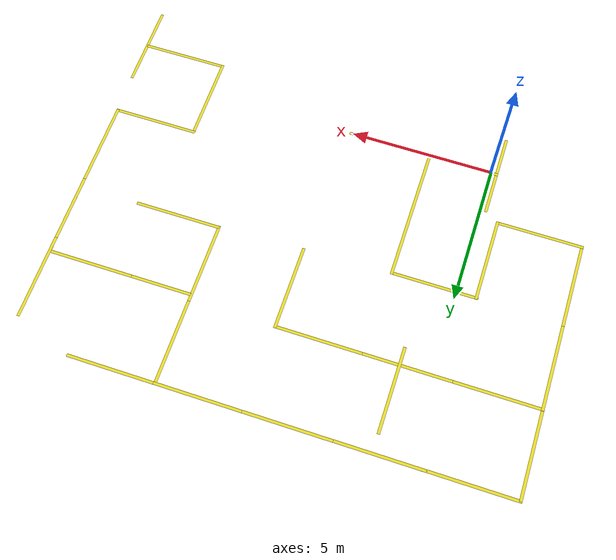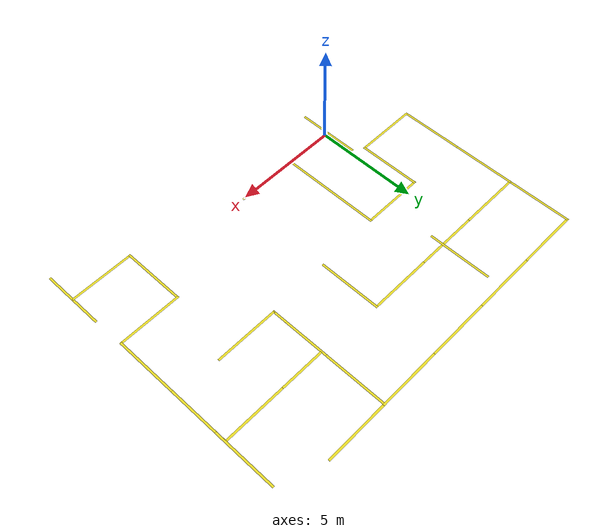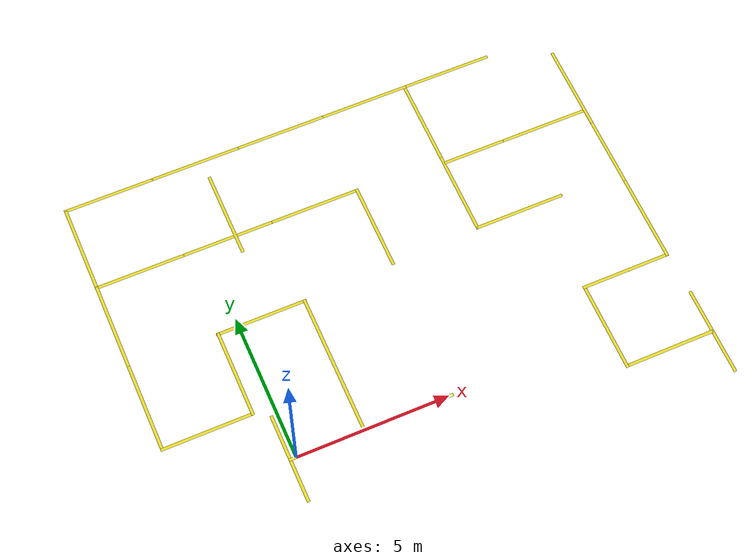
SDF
<sdf version="1.7">
 <world name="default">
  <light name="sun" type="directional">
   <pose>0 0 10 0 -0 0</pose>
   <diffuse>0.8 0.8 0.8 1</diffuse>
   <specular>0.1 0.1 0.1 1</specular>
   <attenuation>
    <range>1000</range>
    <constant>0.9</constant>
    <linear>0.01</linear>
    <quadratic>0.001</quadratic>
   </attenuation>
   <direction>-0.5 0.5 -1</direction>
   <spot><inner_angle>0</inner_angle><outer_angle>0</outer_angle><falloff>0</falloff></spot>
  </light>
  <gravity>0 0 -9.8</gravity>
  <magnetic_field>6e-06 2.3e-05 -4.2e-05</magnetic_field>
  <atmosphere type="adiabatic"/>
  <physics name="default_physics" default="0" type="ode">
   <max_step_size>0.001</max_step_size>
   <real_time_factor>1</real_time_factor>
   <real_time_update_rate>1000</real_time_update_rate>
  </physics>
  <scene><ambient>0.4 0.4 0.4 1</ambient><background>0.7 0.7 0.7 1</background><shadows>1</shadows></scene>
  <spherical_coordinates>
   <surface_model>EARTH_WGS84</surface_model>
   <latitude_deg>0</latitude_deg>
   <longitude_deg>0</longitude_deg>
   <elevation>0</elevation>
   <heading_deg>0</heading_deg>
  </spherical_coordinates>
  <model name="yellow line_5">
   <static>1</static>
   <link name="link_ground">
    <collision name="collision">
     <geometry><plane><normal>0 0 1</normal><size>0.1 4.8</size></plane></geometry>
     <surface><friction><ode><mu>100</mu><mu2>50</mu2></ode></friction></surface>
    </collision>
    <visual name="visual_ground">
     <cast_shadows>0</cast_shadows>
     <geometry><plane><normal>0 0 1</normal><size>0.1 4.8</size></plane></geometry>
     <material>
      <script><uri>file://media/materials/scripts/gazebo.material</uri><name>Gazebo/Yellow</name></script>
     </material>
    </visual>
   </link>
   <pose>2.19978 2.39516 0 0 -0 0</pose>
  </model>
  <model name="yellow line_6">
   <static>1</static>
   <link name="link_ground">
    <collision name="collision">
     <geometry><plane><normal>0 0 1</normal><size>0.1 2.5</size></plane></geometry>
     <surface><friction><ode><mu>100</mu><mu2>50</mu2></ode></friction></surface>
    </collision>
    <visual name="visual_ground">
     <cast_shadows>0</cast_shadows>
     <geometry><plane><normal>0 0 1</normal><size>0.1 2.5</size></plane></geometry>
     <material>
      <script><uri>file://media/materials/scripts/gazebo.material</uri><name>Gazebo/Yellow</name></script>
     </material>
    </visual>
   </link>
   <pose>1 0 0 0 -0 1.57</pose>
  </model>
  <model name="yellow line">
   <pose>3.64067 -0.002486 -2e-06 4e-06 -0 1.57263</pose>
   <link name="link_ground">
    <collision name="collision">
     <geometry><box><size>0.1 3 1e-05</size></box></geometry>
     <surface><friction><ode><mu>100</mu><mu2>50</mu2></ode></friction></surface>
    </collision>
    <visual name="visual_ground">
     <cast_shadows>0</cast_shadows>
     <geometry><box><size>0.1 3 1e-05</size></box></geometry>
     <material>
      <script><uri>file://media/materials/scripts/gazebo.material</uri><name>Gazebo/Yellow</name></script>
     </material>
    </visual>
    <inertial>
     <inertia><ixx>1</ixx><ixy>0</ixy><ixz>0</ixz><iyy>1</iyy><iyz>0</iyz><izz>1</izz></inertia>
     <mass>1</mass>
    </inertial>
   </link>
  </model>
  <model name="yellow line_clone">
   <pose>0.7517 4.74225 -3e-06 -6e-06 0 1.57253</pose>
   <link name="link_ground">
    <collision name="collision">
     <geometry><box><size>0.1 3 1e-05</size></box></geometry>
     <surface><friction><ode><mu>100</mu><mu2>50</mu2></ode></friction></surface>
    </collision>
    <visual name="visual_ground">
     <cast_shadows>0</cast_shadows>
     <geometry><box><size>0.1 3 1e-05</size></box></geometry>
     <material>
      <script><uri>file://media/materials/scripts/gazebo.material</uri><name>Gazebo/Yellow</name></script>
     </material>
    </visual>
    <inertial>
     <inertia><ixx>1</ixx><ixy>0</ixy><ixz>0</ixz><iyy>1</iyy><iyz>0</iyz><izz>1</izz></inertia>
     <mass>1</mass>
    </inertial>
   </link>
  </model>
  <model name="yellow line_0">
   <pose>-0.684863 3.2835 7e-06 -6e-06 1e-06 2e-06</pose>
   <link name="link_ground">
    <collision name="collision">
     <geometry><box><size>0.1 3 1e-05</size></box></geometry>
     <surface><friction><ode><mu>100</mu><mu2>50</mu2></ode></friction></surface>
    </collision>
    <visual name="visual_ground">
     <cast_shadows>0</cast_shadows>
     <geometry><box><size>0.1 3 1e-05</size></box></geometry>
     <material>
      <script><uri>file://media/materials/scripts/gazebo.material</uri><name>Gazebo/Yellow</name></script>
     </material>
    </visual>
    <inertial>
     <inertia><ixx>1</ixx><ixy>0</ixy><ixz>0</ixz><iyy>1</iyy><iyz>0</iyz><izz>1</izz></inertia>
     <mass>1</mass>
    </inertial>
   </link>
  </model>
  <model name="yellow line_clone_clone">
   <pose>-2.14412 1.82781 -9e-06 1e-05 -0 1.57253</pose>
   <link name="link_ground">
    <collision name="collision">
     <geometry><box><size>0.1 3 1e-05</size></box></geometry>
     <surface><friction><ode><mu>100</mu><mu2>50</mu2></ode></friction></surface>
    </collision>
    <visual name="visual_ground">
     <cast_shadows>0</cast_shadows>
     <geometry><box><size>0.1 3 1e-05</size></box></geometry>
     <material>
      <script><uri>file://media/materials/scripts/gazebo.material</uri><name>Gazebo/Yellow</name></script>
     </material>
    </visual>
    <inertial>
     <inertia><ixx>1</ixx><ixy>0</ixy><ixz>0</ixz><iyy>1</iyy><iyz>0</iyz><izz>1</izz></inertia>
     <mass>1</mass>
    </inertial>
   </link>
  </model>
  <model name="yellow line_1">
   <pose>-3.59658 3.31193 -8e-06 5e-06 2e-06 0</pose>
   <link name="link_ground">
    <collision name="collision">
     <geometry><box><size>0.1 3 1e-05</size></box></geometry>
     <surface><friction><ode><mu>100</mu><mu2>50</mu2></ode></friction></surface>
    </collision>
    <visual name="visual_ground">
     <cast_shadows>0</cast_shadows>
     <geometry><box><size>0.1 3 1e-05</size></box></geometry>
     <material>
      <script><uri>file://media/materials/scripts/gazebo.material</uri><name>Gazebo/Yellow</name></script>
     </material>
    </visual>
    <inertial>
     <inertia><ixx>1</ixx><ixy>0</ixy><ixz>0</ixz><iyy>1</iyy><iyz>0</iyz><izz>1</izz></inertia>
     <mass>1</mass>
    </inertial>
   </link>
  </model>
  <model name="yellow line_2">
   <pose>-3.59619 6.29229 -3e-06 6e-06 -2e-06 0</pose>
   <link name="link_ground">
    <collision name="collision">
     <geometry><box><size>0.1 3 1e-05</size></box></geometry>
     <surface><friction><ode><mu>100</mu><mu2>50</mu2></ode></friction></surface>
    </collision>
    <visual name="visual_ground">
     <cast_shadows>0</cast_shadows>
     <geometry><box><size>0.1 3 1e-05</size></box></geometry>
     <material>
      <script><uri>file://media/materials/scripts/gazebo.material</uri><name>Gazebo/Yellow</name></script>
     </material>
    </visual>
    <inertial>
     <inertia><ixx>1</ixx><ixy>0</ixy><ixz>0</ixz><iyy>1</iyy><iyz>0</iyz><izz>1</izz></inertia>
     <mass>1</mass>
    </inertial>
   </link>
  </model>
  <model name="yellow line_clone_clone_0">
   <pose>-2.14961 7.75344 -1.8e-05 -9e-06 1e-06 1.57253</pose>
   <link name="link_ground">
    <collision name="collision">
     <geometry><box><size>0.1 3 1e-05</size></box></geometry>
     <surface><friction><ode><mu>100</mu><mu2>50</mu2></ode></friction></surface>
    </collision>
    <visual name="visual_ground">
     <cast_shadows>0</cast_shadows>
     <geometry><box><size>0.1 3 1e-05</size></box></geometry>
     <material>
      <script><uri>file://media/materials/scripts/gazebo.material</uri><name>Gazebo/Yellow</name></script>
     </material>
    </visual>
    <inertial>
     <inertia><ixx>1</ixx><ixy>0</ixy><ixz>0</ixz><iyy>1</iyy><iyz>0</iyz><izz>1</izz></inertia>
     <mass>1</mass>
    </inertial>
   </link>
  </model>
  <model name="yellow line_2_clone">
   <pose>-3.59718 9.25688 -2e-05 1.7e-05 -0 0</pose>
   <link name="link_ground">
    <collision name="collision">
     <geometry><box><size>0.1 3 1e-05</size></box></geometry>
     <surface><friction><ode><mu>100</mu><mu2>50</mu2></ode></friction></surface>
    </collision>
    <visual name="visual_ground">
     <cast_shadows>0</cast_shadows>
     <geometry><box><size>0.1 3 1e-05</size></box></geometry>
     <material>
      <script><uri>file://media/materials/scripts/gazebo.material</uri><name>Gazebo/Yellow</name></script>
     </material>
    </visual>
    <inertial>
     <inertia><ixx>1</ixx><ixy>0</ixy><ixz>0</ixz><iyy>1</iyy><iyz>0</iyz><izz>1</izz></inertia>
     <mass>1</mass>
    </inertial>
   </link>
  </model>
  <model name="yellow line_clone_clone_1">
   <pose>0.810121 7.75828 -1.8e-05 2.3e-05 -5e-06 1.57253</pose>
   <link name="link_ground">
    <collision name="collision">
     <geometry><box><size>0.1 3 1e-05</size></box></geometry>
     <surface><friction><ode><mu>100</mu><mu2>50</mu2></ode></friction></surface>
    </collision>
    <visual name="visual_ground">
     <cast_shadows>0</cast_shadows>
     <geometry><box><size>0.1 3 1e-05</size></box></geometry>
     <material>
      <script><uri>file://media/materials/scripts/gazebo.material</uri><name>Gazebo/Yellow</name></script>
     </material>
    </visual>
    <inertial>
     <inertia><ixx>1</ixx><ixy>0</ixy><ixz>0</ixz><iyy>1</iyy><iyz>0</iyz><izz>1</izz></inertia>
     <mass>1</mass>
    </inertial>
   </link>
  </model>
  <model name="yellow line_clone_clone_2">
   <pose>3.79999 7.76362 -2e-06 -4e-06 1e-06 1.57253</pose>
   <link name="link_ground">
    <collision name="collision">
     <geometry><box><size>0.1 3 1e-05</size></box></geometry>
     <surface><friction><ode><mu>100</mu><mu2>50</mu2></ode></friction></surface>
    </collision>
    <visual name="visual_ground">
     <cast_shadows>0</cast_shadows>
     <geometry><box><size>0.1 3 1e-05</size></box></geometry>
     <material>
      <script><uri>file://media/materials/scripts/gazebo.material</uri><name>Gazebo/Yellow</name></script>
     </material>
    </visual>
    <inertial>
     <inertia><ixx>1</ixx><ixy>0</ixy><ixz>0</ixz><iyy>1</iyy><iyz>0</iyz><izz>1</izz></inertia>
     <mass>1</mass>
    </inertial>
   </link>
  </model>
  <model name="yellow line_3">
   <pose>5.25144 6.31254 -0 1.1e-05 -0 0</pose>
   <link name="link_ground">
    <collision name="collision">
     <geometry><box><size>0.1 3 1e-05</size></box></geometry>
     <surface><friction><ode><mu>100</mu><mu2>50</mu2></ode></friction></surface>
    </collision>
    <visual name="visual_ground">
     <cast_shadows>0</cast_shadows>
     <geometry><box><size>0.1 3 1e-05</size></box></geometry>
     <material>
      <script><uri>file://media/materials/scripts/gazebo.material</uri><name>Gazebo/Yellow</name></script>
     </material>
    </visual>
    <inertial>
     <inertia><ixx>1</ixx><ixy>0</ixy><ixz>0</ixz><iyy>1</iyy><iyz>0</iyz><izz>1</izz></inertia>
     <mass>1</mass>
    </inertial>
   </link>
  </model>
  <model name="yellow line_4">
   <pose>1.06082 8.61861 -2e-06 4e-06 -1e-06 0</pose>
   <link name="link_ground">
    <collision name="collision">
     <geometry><box><size>0.1 2.99999 1e-05</size></box></geometry>
     <surface><friction><ode><mu>100</mu><mu2>50</mu2></ode></friction></surface>
    </collision>
    <visual name="visual_ground">
     <cast_shadows>0</cast_shadows>
     <geometry><box><size>0.1 2.99999 1e-05</size></box></geometry>
     <material>
      <script><uri>file://media/materials/scripts/gazebo.material</uri><name>Gazebo/Yellow</name></script>
     </material>
    </visual>
    <inertial>
     <inertia><ixx>1</ixx><ixy>0</ixy><ixz>0</ixz><iyy>1</iyy><iyz>0</iyz><izz>1</izz></inertia>
     <mass>1</mass>
    </inertial>
   </link>
  </model>
  <model name="yellow line_clone_clone_0_clone">
   <pose>-2.14731 10.7557 -6e-06 -7e-06 0 1.57253</pose>
   <link name="link_ground">
    <collision name="collision">
     <geometry><box><size>0.1 3 1e-05</size></box></geometry>
     <surface><friction><ode><mu>100</mu><mu2>50</mu2></ode></friction></surface>
    </collision>
    <visual name="visual_ground">
     <cast_shadows>0</cast_shadows>
     <geometry><box><size>0.1 3 1e-05</size></box></geometry>
     <material>
      <script><uri>file://media/materials/scripts/gazebo.material</uri><name>Gazebo/Yellow</name></script>
     </material>
    </visual>
    <inertial>
     <inertia><ixx>1</ixx><ixy>0</ixy><ixz>0</ixz><iyy>1</iyy><iyz>0</iyz><izz>1</izz></inertia>
     <mass>1</mass>
    </inertial>
   </link>
  </model>
  <model name="yellow line_clone_clone_0_clone_clone">
   <pose>0.819861 10.7638 5e-06 0 2e-06 1.57253</pose>
   <link name="link_ground">
    <collision name="collision">
     <geometry><box><size>0.1 3 1e-05</size></box></geometry>
     <surface><friction><ode><mu>100</mu><mu2>50</mu2></ode></friction></surface>
    </collision>
    <visual name="visual_ground">
     <cast_shadows>0</cast_shadows>
     <geometry><box><size>0.1 3 1e-05</size></box></geometry>
     <material>
      <script><uri>file://media/materials/scripts/gazebo.material</uri><name>Gazebo/Yellow</name></script>
     </material>
    </visual>
    <inertial>
     <inertia><ixx>1</ixx><ixy>0</ixy><ixz>0</ixz><iyy>1</iyy><iyz>0</iyz><izz>1</izz></inertia>
     <mass>1</mass>
    </inertial>
   </link>
  </model>
  <model name="yellow line_clone_clone_0_clone_clone_0">
   <pose>3.81147 10.7719 -1e-06 -1.1e-05 -2e-06 1.57253</pose>
   <link name="link_ground">
    <collision name="collision">
     <geometry><box><size>0.1 3 1e-05</size></box></geometry>
     <surface><friction><ode><mu>100</mu><mu2>50</mu2></ode></friction></surface>
    </collision>
    <visual name="visual_ground">
     <cast_shadows>0</cast_shadows>
     <geometry><box><size>0.1 3 1e-05</size></box></geometry>
     <material>
      <script><uri>file://media/materials/scripts/gazebo.material</uri><name>Gazebo/Yellow</name></script>
     </material>
    </visual>
    <inertial>
     <inertia><ixx>1</ixx><ixy>0</ixy><ixz>0</ixz><iyy>1</iyy><iyz>0</iyz><izz>1</izz></inertia>
     <mass>1</mass>
    </inertial>
   </link>
  </model>
  <model name="yellow line_clone_clone_0_clone_clone_1">
   <pose>6.7904 10.7785 3e-06 -1.5e-05 0 1.57253</pose>
   <link name="link_ground">
    <collision name="collision">
     <geometry><box><size>0.1 3 1e-05</size></box></geometry>
     <surface><friction><ode><mu>100</mu><mu2>50</mu2></ode></friction></surface>
    </collision>
    <visual name="visual_ground">
     <cast_shadows>0</cast_shadows>
     <geometry><box><size>0.1 3 1e-05</size></box></geometry>
     <material>
      <script><uri>file://media/materials/scripts/gazebo.material</uri><name>Gazebo/Yellow</name></script>
     </material>
    </visual>
    <inertial>
     <inertia><ixx>1</ixx><ixy>0</ixy><ixz>0</ixz><iyy>1</iyy><iyz>0</iyz><izz>1</izz></inertia>
     <mass>1</mass>
    </inertial>
   </link>
  </model>
  <model name="yellow line_clone_clone_0_clone_clone_2">
   <pose>9.76563 10.7866 -2e-06 4e-06 -0 1.57253</pose>
   <link name="link_ground">
    <collision name="collision">
     <geometry><box><size>0.1 3 1e-05</size></box></geometry>
     <surface><friction><ode><mu>100</mu><mu2>50</mu2></ode></friction></surface>
    </collision>
    <visual name="visual_ground">
     <cast_shadows>0</cast_shadows>
     <geometry><box><size>0.1 3 1e-05</size></box></geometry>
     <material>
      <script><uri>file://media/materials/scripts/gazebo.material</uri><name>Gazebo/Yellow</name></script>
     </material>
    </visual>
    <inertial>
     <inertia><ixx>1</ixx><ixy>0</ixy><ixz>0</ixz><iyy>1</iyy><iyz>0</iyz><izz>1</izz></inertia>
     <mass>1</mass>
    </inertial>
   </link>
  </model>
  <model name="yellow line_7">
   <pose>8.23183 9.31132 -8e-06 -9e-06 2e-06 0</pose>
   <link name="link_ground">
    <collision name="collision">
     <geometry><box><size>0.1 3 1e-05</size></box></geometry>
     <surface><friction><ode><mu>100</mu><mu2>50</mu2></ode></friction></surface>
    </collision>
    <visual name="visual_ground">
     <cast_shadows>0</cast_shadows>
     <geometry><box><size>0.1 3 1e-05</size></box></geometry>
     <material>
      <script><uri>file://media/materials/scripts/gazebo.material</uri><name>Gazebo/Yellow</name></script>
     </material>
    </visual>
    <inertial>
     <inertia><ixx>1</ixx><ixy>0</ixy><ixz>0</ixz><iyy>1</iyy><iyz>0</iyz><izz>1</izz></inertia>
     <mass>1</mass>
    </inertial>
   </link>
  </model>
  <model name="yellow line_8">
   <pose>8.2307 6.41867 -2.7e-05 -8e-06 0 0</pose>
   <link name="link_ground">
    <collision name="collision">
     <geometry><box><size>0.1 3 1e-05</size></box></geometry>
     <surface><friction><ode><mu>100</mu><mu2>50</mu2></ode></friction></surface>
    </collision>
    <visual name="visual_ground">
     <cast_shadows>0</cast_shadows>
     <geometry><box><size>0.1 3 1e-05</size></box></geometry>
     <material>
      <script><uri>file://media/materials/scripts/gazebo.material</uri><name>Gazebo/Yellow</name></script>
     </material>
    </visual>
    <inertial>
     <inertia><ixx>1</ixx><ixy>0</ixy><ixz>0</ixz><iyy>1</iyy><iyz>0</iyz><izz>1</izz></inertia>
     <mass>1</mass>
    </inertial>
   </link>
  </model>
  <model name="yellow line_clone_clone_0_clone_clone_2_clone">
   <pose>9.72336 4.97585 -2e-06 -4e-06 -0 1.57253</pose>
   <link name="link_ground">
    <collision name="collision">
     <geometry><box><size>0.1 3 1e-05</size></box></geometry>
     <surface><friction><ode><mu>100</mu><mu2>50</mu2></ode></friction></surface>
    </collision>
    <visual name="visual_ground">
     <cast_shadows>0</cast_shadows>
     <geometry><box><size>0.1 3 1e-05</size></box></geometry>
     <material>
      <script><uri>file://media/materials/scripts/gazebo.material</uri><name>Gazebo/Yellow</name></script>
     </material>
    </visual>
    <inertial>
     <inertia><ixx>1</ixx><ixy>0</ixy><ixz>0</ixz><iyy>1</iyy><iyz>0</iyz><izz>1</izz></inertia>
     <mass>1</mass>
    </inertial>
   </link>
  </model>
  <model name="yellow line_clone_clone_0_clone_clone_2_clone_0">
   <pose>9.75262 7.5806 -2.7e-05 2.1e-05 -0 1.57253</pose>
   <link name="link_ground">
    <collision name="collision">
     <geometry><box><size>0.1 3 1e-05</size></box></geometry>
     <surface><friction><ode><mu>100</mu><mu2>50</mu2></ode></friction></surface>
    </collision>
    <visual name="visual_ground">
     <cast_shadows>0</cast_shadows>
     <geometry><box><size>0.1 3 1e-05</size></box></geometry>
     <material>
      <script><uri>file://media/materials/scripts/gazebo.material</uri><name>Gazebo/Yellow</name></script>
     </material>
    </visual>
    <inertial>
     <inertia><ixx>1</ixx><ixy>0</ixy><ixz>0</ixz><iyy>1</iyy><iyz>0</iyz><izz>1</izz></inertia>
     <mass>1</mass>
    </inertial>
   </link>
  </model>
  <model name="yellow line_clone_clone_0_clone_clone_2_clone_1">
   <pose>11.8582 7.58394 -2.1e-05 4e-06 -0 1.57253</pose>
   <link name="link_ground">
    <collision name="collision">
     <geometry><box><size>0.1 3 1e-05</size></box></geometry>
     <surface><friction><ode><mu>100</mu><mu2>50</mu2></ode></friction></surface>
    </collision>
    <visual name="visual_ground">
     <cast_shadows>0</cast_shadows>
     <geometry><box><size>0.1 3 1e-05</size></box></geometry>
     <material>
      <script><uri>file://media/materials/scripts/gazebo.material</uri><name>Gazebo/Yellow</name></script>
     </material>
    </visual>
    <inertial>
     <inertia><ixx>1</ixx><ixy>0</ixy><ixz>0</ixz><iyy>1</iyy><iyz>0</iyz><izz>1</izz></inertia>
     <mass>1</mass>
    </inertial>
   </link>
  </model>
  <model name="yellow line_9">
   <pose>13.3118 6.10237 -3.5e-05 -3e-06 -3.7e-05 0</pose>
   <link name="link_ground">
    <collision name="collision">
     <geometry><box><size>0.1 3 1e-05</size></box></geometry>
     <surface><friction><ode><mu>100</mu><mu2>50</mu2></ode></friction></surface>
    </collision>
    <visual name="visual_ground">
     <cast_shadows>0</cast_shadows>
     <geometry><box><size>0.1 3 1e-05</size></box></geometry>
     <material>
      <script><uri>file://media/materials/scripts/gazebo.material</uri><name>Gazebo/Yellow</name></script>
     </material>
    </visual>
    <inertial>
     <inertia><ixx>1</ixx><ixy>0</ixy><ixz>0</ixz><iyy>1</iyy><iyz>0</iyz><izz>1</izz></inertia>
     <mass>1</mass>
    </inertial>
   </link>
  </model>
  <model name="yellow line_10">
   <pose>13.3156 8.55615 -2e-06 4e-06 -0 0</pose>
   <link name="link_ground">
    <collision name="collision">
     <geometry><box><size>0.1 3 1e-05</size></box></geometry>
     <surface><friction><ode><mu>100</mu><mu2>50</mu2></ode></friction></surface>
    </collision>
    <visual name="visual_ground">
     <cast_shadows>0</cast_shadows>
     <geometry><box><size>0.1 3 1e-05</size></box></geometry>
     <material>
      <script><uri>file://media/materials/scripts/gazebo.material</uri><name>Gazebo/Yellow</name></script>
     </material>
    </visual>
    <inertial>
     <inertia><ixx>1</ixx><ixy>0</ixy><ixz>0</ixz><iyy>1</iyy><iyz>0</iyz><izz>1</izz></inertia>
     <mass>1</mass>
    </inertial>
   </link>
  </model>
  <model name="yellow line_11">
   <pose>13.3117 3.16747 -1.3e-05 -6e-06 0 0</pose>
   <link name="link_ground">
    <collision name="collision">
     <geometry><box><size>0.1 3 1e-05</size></box></geometry>
     <surface><friction><ode><mu>100</mu><mu2>50</mu2></ode></friction></surface>
    </collision>
    <visual name="visual_ground">
     <cast_shadows>0</cast_shadows>
     <geometry><box><size>0.1 3 1e-05</size></box></geometry>
     <material>
      <script><uri>file://media/materials/scripts/gazebo.material</uri><name>Gazebo/Yellow</name></script>
     </material>
    </visual>
    <inertial>
     <inertia><ixx>1</ixx><ixy>0</ixy><ixz>0</ixz><iyy>1</iyy><iyz>0</iyz><izz>1</izz></inertia>
     <mass>1</mass>
    </inertial>
   </link>
  </model>
  <model name="yellow line_clone_clone_0_clone_clone_2_clone_clone">
   <pose>11.8558 1.70407 -2.7e-05 0 -0 1.57253</pose>
   <link name="link_ground">
    <collision name="collision">
     <geometry><box><size>0.1 3 1e-05</size></box></geometry>
     <surface><friction><ode><mu>100</mu><mu2>50</mu2></ode></friction></surface>
    </collision>
    <visual name="visual_ground">
     <cast_shadows>0</cast_shadows>
     <geometry><box><size>0.1 3 1e-05</size></box></geometry>
     <material>
      <script><uri>file://media/materials/scripts/gazebo.material</uri><name>Gazebo/Yellow</name></script>
     </material>
    </visual>
    <inertial>
     <inertia><ixx>1</ixx><ixy>0</ixy><ixz>0</ixz><iyy>1</iyy><iyz>0</iyz><izz>1</izz></inertia>
     <mass>1</mass>
    </inertial>
   </link>
  </model>
  <model name="yellow line_12">
   <pose>10.4111 0.197266 -7e-06 -1.6e-05 0 0</pose>
   <link name="link_ground">
    <collision name="collision">
     <geometry><box><size>0.1 3 1e-05</size></box></geometry>
     <surface><friction><ode><mu>100</mu><mu2>50</mu2></ode></friction></surface>
    </collision>
    <visual name="visual_ground">
     <cast_shadows>0</cast_shadows>
     <geometry><box><size>0.1 3 1e-05</size></box></geometry>
     <material>
      <script><uri>file://media/materials/scripts/gazebo.material</uri><name>Gazebo/Yellow</name></script>
     </material>
    </visual>
    <inertial>
     <inertia><ixx>1</ixx><ixy>0</ixy><ixz>0</ixz><iyy>1</iyy><iyz>0</iyz><izz>1</izz></inertia>
     <mass>1</mass>
    </inertial>
   </link>
  </model>
  <model name="yellow line_clone_clone_0_clone_clone_2_clone_clone_clone">
   <pose>11.8744 -1.24777 -3e-06 -5e-06 0 1.57253</pose>
   <link name="link_ground">
    <collision name="collision">
     <geometry><box><size>0.1 3 1e-05</size></box></geometry>
     <surface><friction><ode><mu>100</mu><mu2>50</mu2></ode></friction></surface>
    </collision>
    <visual name="visual_ground">
     <cast_shadows>0</cast_shadows>
     <geometry><box><size>0.1 3 1e-05</size></box></geometry>
     <material>
      <script><uri>file://media/materials/scripts/gazebo.material</uri><name>Gazebo/Yellow</name></script>
     </material>
    </visual>
    <inertial>
     <inertia><ixx>1</ixx><ixy>0</ixy><ixz>0</ixz><iyy>1</iyy><iyz>0</iyz><izz>1</izz></inertia>
     <mass>1</mass>
    </inertial>
   </link>
  </model>
  <model name="yellow line_13">
   <pose>13.3674 -1.23961 -6e-06 -7e-06 -0 0</pose>
   <link name="link_ground">
    <collision name="collision">
     <geometry><box><size>0.1 3 1e-05</size></box></geometry>
     <surface><friction><ode><mu>100</mu><mu2>50</mu2></ode></friction></surface>
    </collision>
    <visual name="visual_ground">
     <cast_shadows>0</cast_shadows>
     <geometry><box><size>0.1 3 1e-05</size></box></geometry>
     <material>
      <script><uri>file://media/materials/scripts/gazebo.material</uri><name>Gazebo/Yellow</name></script>
     </material>
    </visual>
    <inertial>
     <inertia><ixx>1</ixx><ixy>0</ixy><ixz>0</ixz><iyy>1</iyy><iyz>0</iyz><izz>1</izz></inertia>
     <mass>1</mass>
    </inertial>
   </link>
  </model>
  <model name="yellow line_14">
   <pose>-0.200066 0.042625 -2e-06 -4e-06 0 0</pose>
   <link name="link_ground">
    <collision name="collision">
     <geometry><box><size>0.1 3 1e-05</size></box></geometry>
     <surface><friction><ode><mu>100</mu><mu2>50</mu2></ode></friction></surface>
    </collision>
    <visual name="visual_ground">
     <cast_shadows>0</cast_shadows>
     <geometry><box><size>0.1 3 1e-05</size></box></geometry>
     <material>
      <script><uri>file://media/materials/scripts/gazebo.material</uri><name>Gazebo/Yellow</name></script>
     </material>
    </visual>
    <inertial>
     <inertia><ixx>1</ixx><ixy>0</ixy><ixz>0</ixz><iyy>1</iyy><iyz>0</iyz><izz>1</izz></inertia>
     <mass>1</mass>
    </inertial>
   </link>
  </model>
 </world>
</sdf>
